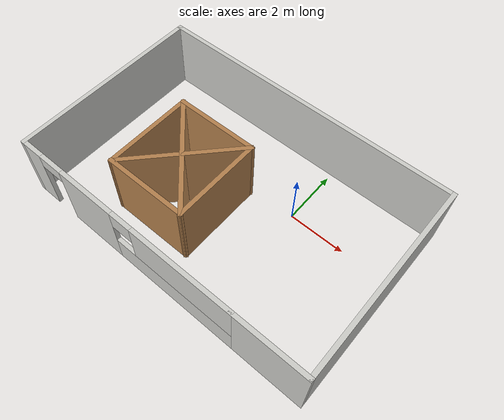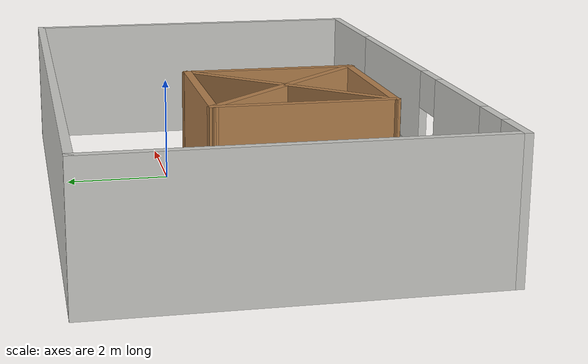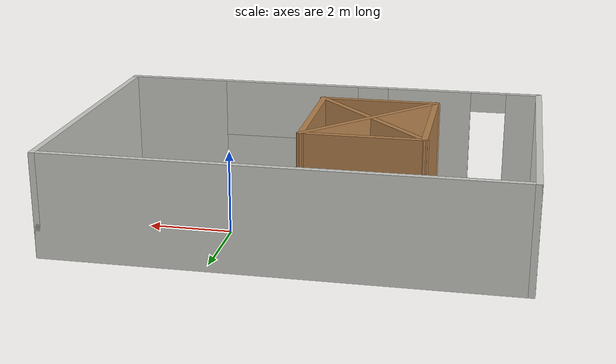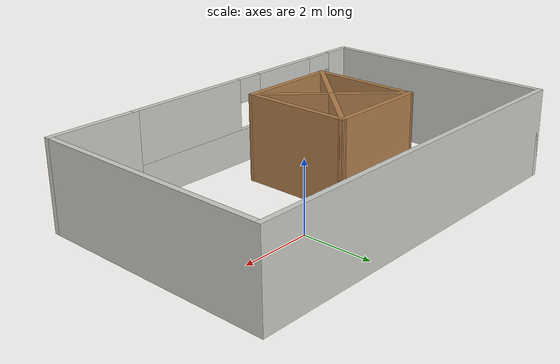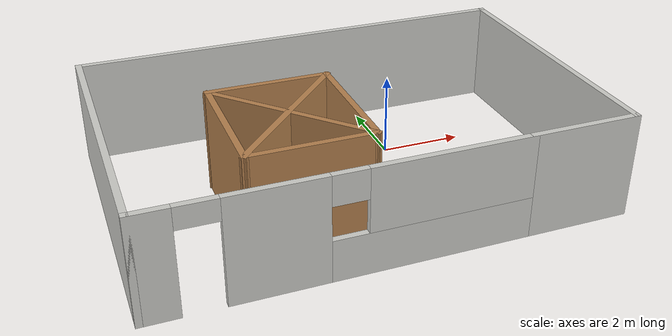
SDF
<?xml version='1.0'?>
<sdf version='1.7'>
  <model name='home_BOX'>
    <pose>-1.60963 -1.13421 0 0 -0 0</pose>
    <link name='Wall_11'>
      <collision name='Wall_11_Collision'>
        <geometry>
          <box>
            <size>4.361 0.15 2.5</size>
          </box>
        </geometry>
        <pose>0 0 1.25 0 -0 0</pose>
      </collision>
      <visual name='Wall_11_Visual'>
        <pose>0 0 1.25 0 -0 0</pose>
        <geometry>
          <box>
            <size>4.361 0.15 2.5</size>
          </box>
        </geometry>
        <material>
          <script>
            <uri>file://media/materials/scripts/gazebo.material</uri>
            <name>Gazebo/Wood</name>
          </script>
          <ambient>1 1 1 1</ambient>
        </material>
        <meta>
          <layer>0</layer>
        </meta>
      </visual>
      <pose>-1.46394 -0.619974 0 0 -0 0.82739</pose>
    </link>
    <link name='Wall_13'>
      <pose>-1.25 -3.425 0 0 -0 0</pose>
      <visual name='Wall_13_Visual_0'>
        <pose>-3.79911 0 1.25 0 -0 0</pose>
        <geometry>
          <box>
            <size>0.901774 0.15 2.5</size>
          </box>
        </geometry>
        <material>
          <script>
            <uri>file://media/materials/scripts/gazebo.material</uri>
            <name>Gazebo/CeilingTiled</name>
          </script>
          <ambient>1 1 1 1</ambient>
        </material>
        <meta>
          <layer>0</layer>
        </meta>
      </visual>
      <collision name='Wall_13_Collision_0'>
        <geometry>
          <box>
            <size>0.901774 0.15 2.5</size>
          </box>
        </geometry>
        <pose>-3.79911 0 1.25 0 -0 0</pose>
      </collision>
      <visual name='Wall_13_Visual_1'>
        <pose>-1.36908 0 1.25 0 -0 0</pose>
        <geometry>
          <box>
            <size>2.15829 0.15 2.5</size>
          </box>
        </geometry>
        <material>
          <script>
            <uri>file://media/materials/scripts/gazebo.material</uri>
            <name>Gazebo/CeilingTiled</name>
          </script>
          <ambient>1 1 1 1</ambient>
        </material>
        <meta>
          <layer>0</layer>
        </meta>
      </visual>
      <collision name='Wall_13_Collision_1'>
        <geometry>
          <box>
            <size>2.15829 0.15 2.5</size>
          </box>
        </geometry>
        <pose>-1.36908 0 1.25 0 -0 0</pose>
      </collision>
      <visual name='Wall_13_Visual_2'>
        <pose>1.98003 0 0.5 0 -0 0</pose>
        <geometry>
          <box>
            <size>4.53993 0.15 1</size>
          </box>
        </geometry>
        <material>
          <script>
            <uri>file://media/materials/scripts/gazebo.material</uri>
            <name>Gazebo/CeilingTiled</name>
          </script>
          <ambient>1 1 1 1</ambient>
        </material>
        <meta>
          <layer>0</layer>
        </meta>
      </visual>
      <collision name='Wall_13_Collision_2'>
        <geometry>
          <box>
            <size>4.53993 0.15 1</size>
          </box>
        </geometry>
        <pose>1.98003 0 0.5 0 -0 0</pose>
      </collision>
      <visual name='Wall_13_Visual_3'>
        <pose>2.38003 0 1.75 0 -0 0</pose>
        <geometry>
          <box>
            <size>3.73994 0.15 1.5</size>
          </box>
        </geometry>
        <material>
          <script>
            <uri>file://media/materials/scripts/gazebo.material</uri>
            <name>Gazebo/CeilingTiled</name>
          </script>
          <ambient>1 1 1 1</ambient>
        </material>
        <meta>
          <layer>0</layer>
        </meta>
      </visual>
      <collision name='Wall_13_Collision_3'>
        <geometry>
          <box>
            <size>3.73994 0.15 1.5</size>
          </box>
        </geometry>
        <pose>2.38003 0 1.75 0 -0 0</pose>
      </collision>
      <visual name='Wall_13_Visual_4'>
        <pose>0.110065 0 2.15 0 -0 0</pose>
        <geometry>
          <box>
            <size>0.8 0.15 0.7</size>
          </box>
        </geometry>
        <material>
          <script>
            <uri>file://media/materials/scripts/gazebo.material</uri>
            <name>Gazebo/CeilingTiled</name>
          </script>
          <ambient>1 1 1 1</ambient>
        </material>
        <meta>
          <layer>0</layer>
        </meta>
      </visual>
      <collision name='Wall_13_Collision_4'>
        <geometry>
          <box>
            <size>0.8 0.15 0.7</size>
          </box>
        </geometry>
        <pose>0.110065 0 2.15 0 -0 0</pose>
      </collision>
      <visual name='Wall_13_Visual_5'>
        <pose>-2.89823 0 2.25 0 -0 0</pose>
        <geometry>
          <box>
            <size>0.9 0.15 0.5</size>
          </box>
        </geometry>
        <material>
          <script>
            <uri>file://media/materials/scripts/gazebo.material</uri>
            <name>Gazebo/CeilingTiled</name>
          </script>
          <ambient>1 1 1 1</ambient>
        </material>
        <meta>
          <layer>0</layer>
        </meta>
      </visual>
      <collision name='Wall_13_Collision_5'>
        <geometry>
          <box>
            <size>0.9 0.15 0.5</size>
          </box>
        </geometry>
        <pose>-2.89823 0 2.25 0 -0 0</pose>
      </collision>
    </link>
    <link name='Wall_15'>
      <collision name='Wall_15_Collision'>
        <geometry>
          <box>
            <size>7 0.15 2.5</size>
          </box>
        </geometry>
        <pose>0 0 1.25 0 -0 0</pose>
      </collision>
      <visual name='Wall_15_Visual'>
        <pose>0 0 1.25 0 -0 0</pose>
        <geometry>
          <box>
            <size>7 0.15 2.5</size>
          </box>
        </geometry>
        <material>
          <script>
            <uri>file://media/materials/scripts/gazebo.material</uri>
            <name>Gazebo/CeilingTiled</name>
          </script>
          <ambient>1 1 1 1</ambient>
        </material>
        <meta>
          <layer>0</layer>
        </meta>
      </visual>
      <pose>-5.425 -0 0 0 -0 1.5708</pose>
    </link>
    <link name='Wall_16'>
      <collision name='Wall_16_Collision'>
        <geometry>
          <box>
            <size>11 0.15 2.5</size>
          </box>
        </geometry>
        <pose>0 0 1.25 0 -0 0</pose>
      </collision>
      <visual name='Wall_16_Visual'>
        <pose>0 0 1.25 0 -0 0</pose>
        <geometry>
          <box>
            <size>11 0.15 2.5</size>
          </box>
        </geometry>
        <material>
          <script>
            <uri>file://media/materials/scripts/gazebo.material</uri>
            <name>Gazebo/CeilingTiled</name>
          </script>
          <ambient>1 1 1 1</ambient>
        </material>
        <meta>
          <layer>0</layer>
        </meta>
      </visual>
      <pose>-0 3.425 0 0 -0 0</pose>
    </link>
    <link name='Wall_17'>
      <collision name='Wall_17_Collision'>
        <geometry>
          <box>
            <size>7 0.15 2.5</size>
          </box>
        </geometry>
        <pose>0 0 1.25 0 -0 0</pose>
      </collision>
      <visual name='Wall_17_Visual'>
        <pose>0 0 1.25 0 -0 0</pose>
        <geometry>
          <box>
            <size>7 0.15 2.5</size>
          </box>
        </geometry>
        <material>
          <script>
            <uri>file://media/materials/scripts/gazebo.material</uri>
            <name>Gazebo/CeilingTiled</name>
          </script>
          <ambient>1 1 1 1</ambient>
        </material>
        <meta>
          <layer>0</layer>
        </meta>
      </visual>
      <pose>5.425 -0 0 0 -0 -1.5708</pose>
    </link>
    <link name='Wall_18'>
      <collision name='Wall_18_Collision'>
        <geometry>
          <box>
            <size>2.65 0.15 2.5</size>
          </box>
        </geometry>
        <pose>0 0 1.25 0 -0 0</pose>
      </collision>
      <visual name='Wall_18_Visual'>
        <pose>0 0 1.25 0 -0 0</pose>
        <geometry>
          <box>
            <size>2.65 0.15 2.5</size>
          </box>
        </geometry>
        <material>
          <script>
            <uri>file://media/materials/scripts/gazebo.material</uri>
            <name>Gazebo/CeilingTiled</name>
          </script>
          <ambient>1 1 1 1</ambient>
        </material>
        <meta>
          <layer>0</layer>
        </meta>
      </visual>
      <pose>4.175 -3.425 0 0 -0 3.14159</pose>
    </link>
    <link name='Wall_4'>
      <collision name='Wall_4_Collision'>
        <geometry>
          <box>
            <size>3.25 0.15 2.5</size>
          </box>
        </geometry>
        <pose>0 0 1.25 0 -0 0</pose>
      </collision>
      <visual name='Wall_4_Visual'>
        <pose>0 0 1.25 0 -0 0</pose>
        <geometry>
          <box>
            <size>3.25 0.15 2.5</size>
          </box>
        </geometry>
        <material>
          <script>
            <uri>file://media/materials/scripts/gazebo.material</uri>
            <name>Gazebo/Wood</name>
          </script>
          <ambient>1 1 1 1</ambient>
        </material>
        <meta>
          <layer>0</layer>
        </meta>
      </visual>
      <pose>-2.88894 -0.619974 0 0 -0 -1.5708</pose>
    </link>
    <link name='Wall_5'>
      <collision name='Wall_5_Collision'>
        <geometry>
          <box>
            <size>3 0.15 2.5</size>
          </box>
        </geometry>
        <pose>0 0 1.25 0 -0 0</pose>
      </collision>
      <visual name='Wall_5_Visual'>
        <pose>0 0 1.25 0 -0 0</pose>
        <geometry>
          <box>
            <size>3 0.15 2.5</size>
          </box>
        </geometry>
        <material>
          <script>
            <uri>file://media/materials/scripts/gazebo.material</uri>
            <name>Gazebo/Wood</name>
          </script>
          <ambient>1 1 1 1</ambient>
        </material>
        <meta>
          <layer>0</layer>
        </meta>
      </visual>
      <pose>-1.46394 -2.16997 0 0 -0 0</pose>
    </link>
    <link name='Wall_6'>
      <collision name='Wall_6_Collision'>
        <geometry>
          <box>
            <size>3.25 0.15 2.5</size>
          </box>
        </geometry>
        <pose>0 0 1.25 0 -0 0</pose>
      </collision>
      <visual name='Wall_6_Visual'>
        <pose>0 0 1.25 0 -0 0</pose>
        <geometry>
          <box>
            <size>3.25 0.15 2.5</size>
          </box>
        </geometry>
        <material>
          <script>
            <uri>file://media/materials/scripts/gazebo.material</uri>
            <name>Gazebo/Wood</name>
          </script>
          <ambient>1 1 1 1</ambient>
        </material>
        <meta>
          <layer>0</layer>
        </meta>
      </visual>
      <pose>-0.038941 -0.619974 0 0 -0 1.5708</pose>
    </link>
    <link name='Wall_7'>
      <collision name='Wall_7_Collision'>
        <geometry>
          <box>
            <size>3 0.15 2.5</size>
          </box>
        </geometry>
        <pose>0 0 1.25 0 -0 0</pose>
      </collision>
      <visual name='Wall_7_Visual'>
        <pose>0 0 1.25 0 -0 0</pose>
        <geometry>
          <box>
            <size>3 0.15 2.5</size>
          </box>
        </geometry>
        <material>
          <script>
            <uri>file://media/materials/scripts/gazebo.material</uri>
            <name>Gazebo/Wood</name>
          </script>
          <ambient>1 1 1 1</ambient>
        </material>
        <meta>
          <layer>0</layer>
        </meta>
      </visual>
      <pose>-1.46394 0.930025 0 0 -0 3.14159</pose>
    </link>
    <link name='Wall_9'>
      <collision name='Wall_9_Collision'>
        <geometry>
          <box>
            <size>4.361 0.15 2.5</size>
          </box>
        </geometry>
        <pose>0 0 1.25 0 -0 0</pose>
      </collision>
      <visual name='Wall_9_Visual'>
        <pose>0 0 1.25 0 -0 0</pose>
        <geometry>
          <box>
            <size>4.361 0.15 2.5</size>
          </box>
        </geometry>
        <material>
          <script>
            <uri>file://media/materials/scripts/gazebo.material</uri>
            <name>Gazebo/Wood</name>
          </script>
          <ambient>1 1 1 1</ambient>
        </material>
        <meta>
          <layer>0</layer>
        </meta>
      </visual>
      <pose>-1.46394 -0.619974 0 0 -0 -0.82739</pose>
    </link>
    <static>1</static>
  </model>
</sdf>
